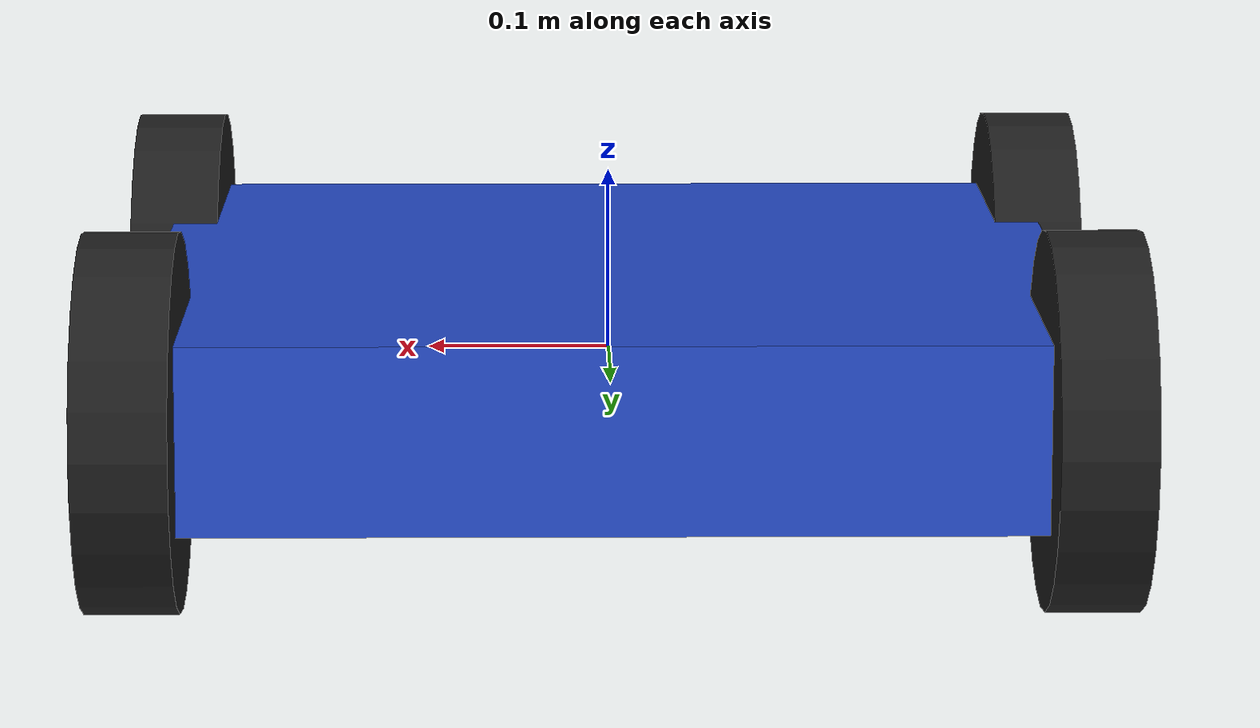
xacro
<?xml version="1.0"?>
<robot name="my_robot" xmlns:xacro="http://www.ros.org/wiki/xacro">

  <!-- Fixed map frame -->
  <link name="map"/>

  <!-- Base link with inertia properties -->
  <link name="base_link">
    <visual>
      <geometry>
        <box size="0.5 0.5 0.1"/> <!-- Adjust size as needed -->
      </geometry>
      <material name="blue"/>
    </visual>
    <inertial>
      <mass value="1.0"/> <!-- Mass in kg, make sure it's non-zero -->
      <inertia ixx="0.01" ixy="0.0" ixz="0.0" iyy="0.01" iyz="0.0" izz="0.01"/> <!-- Inertia tensor -->
    </inertial>
  </link>

  <!-- Fixed joint between map and base_link -->
  <joint name="map_to_base_link" type="fixed">
    <parent link="map"/>
    <child link="base_link"/>
    <origin xyz="0 0 0" rpy="0 0 0"/> <!-- Adjust origin if needed -->
  </joint>

  <!-- Define the rotating wheel macro -->
  <xacro:macro name="wheel" params="name position_x position_y">
    <link name="${name}">
      <visual>
        <geometry>
          <cylinder length="0.05" radius="0.1"/> <!-- Adjust dimensions as needed -->
        </geometry>
        <material name="black"/>
      </visual>
      <collision>
        <geometry>
          <cylinder length="0.05" radius="0.1"/>
        </geometry>
      </collision>
      <inertial>
        <mass value="0.1"/> <!-- Mass of the wheel -->
        <inertia ixx="0.001" ixy="0.0" ixz="0.0" iyy="0.001" iyz="0.0" izz="0.001"/> <!-- Inertia tensor for the wheel -->
      </inertial>
    </link>
    <!-- Continuous joint to allow rotation -->
    <joint name="${name}_joint" type="continuous">
      <parent link="base_link"/>
      <child link="${name}"/>
      <origin xyz="${position_x} ${position_y} 0.0" rpy="0 1.57 0"/> <!-- Position relative to base_link -->
      <axis xyz="1 0 0"/> <!-- Wheel rotation around the Y-axis -->
    </joint>
  </xacro:macro>

  <!-- Use the macro to create wheels -->
  <!-- Front Left Wheel -->

  <xacro:property name="wheel_offset_x" value="0.25"/> <!-- Front and rear offset along X -->
  <xacro:property name="wheel_offset_y" value="0.20"/> <!-- Left and right offset along Y -->

  <!-- Front Left Wheel -->
  <xacro:wheel name="front_left_wheel" position_x="${wheel_offset_x}" position_y="${wheel_offset_y}"/>
  <!-- Front Right Wheel -->
  <xacro:wheel name="front_right_wheel" position_x="${wheel_offset_x}" position_y="-${wheel_offset_y}"/>
  <!-- Rear Left Wheel -->
  <xacro:wheel name="rear_left_wheel" position_x="-${wheel_offset_x}" position_y="${wheel_offset_y}"/>
  <!-- Rear Right Wheel -->
  <xacro:wheel name="rear_right_wheel" position_x="-${wheel_offset_x}" position_y="-${wheel_offset_y}"/>
</robot>
